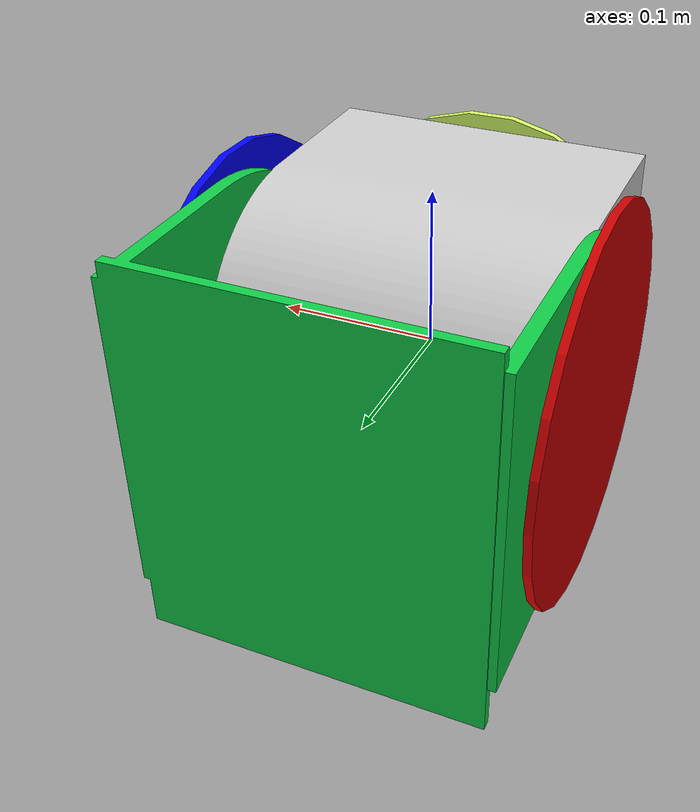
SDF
<?xml version="1.0" ?>
<sdf version="1.8">
<model name="smore" canonical_link="chasis_link">

  <!-- Back joint-->
  <joint name="back_wheel_link_joint" type="revolute">
    <pose relative_to="chasis_link">0.10390 0.05900 0.01019 0.00000 0.00000 0.00000</pose>
    <parent>chasis_link</parent>
    <child>back_link</child>
    <axis>
      <limit>
        <!-- Check actual ranges for back link-->
        <lower>-1.79769e+308</lower>
        <upper>1.79769e+308</upper>
      </limit>
      <xyz>1 0 0</xyz>
    </axis>
  </joint>
  <!-- Back joint-->

  <!-- Front wheel joint-->
  <joint name="front_wheel_link_joint" type="revolute">
    <pose relative_to="chasis_link">0.00000 -0.10251 -0.00000 1.57080 0.00000 0.00000</pose>
    <parent>chasis_link</parent>
    <child>front_wheel_link</child>
    <axis>
      <limit>
        <lower>-1.79769e+308</lower>
        <upper>1.79769e+308</upper>
      </limit>
      <xyz>0 0 1</xyz>
    </axis>
  </joint>
  <!-- Front wheel joint-->

  <!-- Left wheel joint-->
  <joint name="left_wheel_link_joint" type="revolute">
    <pose relative_to="chasis_link">0.11200 0.02822 0.00000 1.57080 1.41363 1.57080</pose>
    <parent>chasis_link</parent>
    <child>left_wheel_link</child>
    <axis>
      <limit>
        <lower>-1.79769e+308</lower>
        <upper>1.79769e+308</upper>
      </limit>
      <xyz>0 0 1</xyz>
    </axis>
  </joint>
  <!-- Left wheel joint-->

  <!-- Right wheel joint-->
  <joint name="right_wheel_link_joint" type="revolute">
    <pose relative_to="chasis_link">-0.11200 0.02822 0.00000 0.00000 1.57080 0.00000</pose>
    <parent>chasis_link</parent>
    <child>right_wheel_link</child>
    <axis>
      <limit>
        <lower>-1.79769e+308</lower>
        <upper>1.79769e+308</upper>
      </limit>
      <xyz>0 0 1</xyz>
    </axis>
  </joint>
  <!-- Right wheel joint-->

  <!-- Chasis link -->
  <link name="chasis_link">
    <pose>0.00000 0.00000 0.00000 0.00000 0.00000 0.00000</pose>
    <collision name="chasis_collision">
      <geometry>
        <mesh>
          <uri>/home/carlos/smore_ws/src/smore_project/ros_gz_example_description/models/smore/meshes/dae/Cube.dae</uri>
          <scale>0.10000 0.10000 0.10000</scale>
        </mesh>
      </geometry>
    </collision>
    <inertial>
      <inertia>
        <ixx>0.00100</ixx>
        <ixy>0.00000</ixy>
        <ixz>0.00000</ixz>
        <iyy>0.00100</iyy>
        <iyz>0.00000</iyz>
        <izz>0.00100</izz>
      </inertia>
      <mass>0.01000</mass>
    </inertial>
    <visual name="chasis">
      <material>
        <diffuse>0.80000 0.80000 0.80000 1.00000</diffuse>
        <specular>0.40000 0.40000 0.40000 0.49804</specular>
        <emissive>0.00000 0.00000 0.00000 1.00000</emissive>
      </material>
      <pose relative_to="chasis_link">0.00000 0.00000 0.00000 0.00000 0.00000 0.00000</pose>
      <geometry>
        <mesh>
          <uri>/home/carlos/smore_ws/src/smore_project/ros_gz_example_description/models/smore/meshes/dae/Cube.dae</uri>
          <scale>0.10000 0.10000 0.10000</scale>
        </mesh>
      </geometry>
    </visual>
  </link>
  <!-- Chasis link -->

  <!-- Back link -->
  <link name="back_link">
    <pose relative_to="chasis_link">0.10390 0.05900 0.01019 0.00000 0.00000 0.00000</pose>
    <collision name="back_collision">
      <geometry>
        <mesh>
          <uri>/home/carlos/smore_ws/src/smore_project/ros_gz_example_description/models/smore/meshes/dae/Cube.004.dae</uri>
          <scale>0.00300 0.08000 0.07000</scale>
        </mesh>
      </geometry>
    </collision>
    <visual name="back">
      <material>
        <diffuse>0.05882 0.80000 0.27843 1.00000</diffuse>
        <specular>0.02745 0.40000 0.13725 0.49804</specular>
        <emissive>0.00000 0.00000 0.00000 1.00000</emissive>
      </material>
      <pose relative_to="back_link">0.00000 0.00000 0.00000 0.00000 0.00000 0.00000</pose>
      <geometry>
        <mesh>
          <uri>/home/carlos/smore_ws/src/smore_project/ros_gz_example_description/models/smore/meshes/dae/Cube.004.dae</uri>
          <scale>0.00300 0.08000 0.07000</scale>
        </mesh>
      </geometry>
    </visual>
  </link>
  <!-- Back link -->

  <!-- Front wheel link-->
  <link name="front_wheel_link">
    <pose relative_to="chasis_link">0.00000 -0.10251 0.00000 1.57080 0.00000 0.00000</pose>
    <collision name="front_wheel_collision">
      <geometry>
        <cylinder>
          <radius>0.11000</radius>
          <length>0.00500</length>
        </cylinder>
      </geometry>
    </collision>
    <inertial>
      <inertia>
        <ixx>0.00003</ixx>
        <ixy>0.00000</ixy>
        <ixz>0.00000</ixz>
        <iyy>0.00006</iyy>
        <iyz>0.00000</iyz>
        <izz>0.00003</izz>
      </inertia>
      <mass>0.01000</mass>
    </inertial>
    <visual name="front_wheel">
      <material>
        <diffuse>0.83137 1.00000 0.40000 1.00000</diffuse>
        <specular>0.41569 0.49804 0.20000 0.49804</specular>
        <emissive>0.00000 0.00000 0.00000 1.00000</emissive>
      </material>
      <pose relative_to="front_wheel_link">-0.00000 -0.00000 -0.00000 0.00000 -0.00000 -0.14096</pose>
      <geometry>
        <cylinder>
          <radius>0.11000</radius>
          <length>0.00500</length>
        </cylinder>
      </geometry>
    </visual>
  </link>
  <!-- Front wheel link-->

  <!-- Left wheek link-->
  <link name="left_wheel_link">
    <pose relative_to="chasis_link">0.11200 0.02822 -0.00000 1.57080 1.41363 1.57080</pose>
    <collision name="left_wheel_collision">
      <geometry>
        <cylinder>
          <radius>0.12000</radius>
          <length>0.00500</length>
        </cylinder>
      </geometry>
    </collision>
    <inertial>
      <inertia>
        <ixx>0.00007</ixx>
        <ixy>0.00000</ixy>
        <ixz>0.00000</ixz>
        <iyy>0.00004</iyy>
        <iyz>0.00000</iyz>
        <izz>0.00004</izz>
      </inertia>
      <mass>0.01000</mass>
    </inertial>
    <visual name="left_wheel">
      <material>
        <diffuse>0.00000 0.00000 1.00000 1.00000</diffuse>
        <specular>0.00000 0.00000 0.49804 0.49804</specular>
        <emissive>0.00000 0.00000 0.00000 1.00000</emissive>
      </material>
      <pose relative_to="left_wheel_link">0.00000 0.00000 0.00000 0.00000 0.00000 0.00000</pose>
      <geometry>
        <cylinder>
          <radius>0.12000</radius>
          <length>0.00500</length>
        </cylinder>
      </geometry>
    </visual>
  </link>
  <!-- Left wheek link-->

  <!-- Right wheek link-->
  <link name="right_wheel_link">
    <pose relative_to="chasis_link">-0.11200 0.02822 0.00000 0.00000 1.57080 0.00000</pose>
    <collision name="right_wheel_collision">
      <geometry>
        <cylinder>
          <radius>0.12000</radius>
          <length>0.00500</length>
        </cylinder>
      </geometry>
    </collision>
    <inertial>
      <inertia>
        <ixx>0.00007</ixx>
        <ixy>0.00000</ixy>
        <ixz>0.00000</ixz>
        <iyy>0.00004</iyy>
        <iyz>0.00000</iyz>
        <izz>0.00004</izz>
      </inertia>
      <mass>0.01000</mass>
    </inertial>
    <visual name="right_wheel">
      <material>
        <diffuse>0.80000 0.00000 0.00000 1.00000</diffuse>
        <specular>0.40000 0.00000 0.00000 0.49804</specular>
        <emissive>0.00000 0.00000 0.00000 1.00000</emissive>
      </material>
      <pose relative_to="right_wheel_link">0.00000 0.00000 0.00000 0.00000 0.00000 0.00000</pose>
      <geometry>
        <cylinder>
          <radius>0.12000</radius>
          <length>0.00500</length>
        </cylinder>
      </geometry>
    </visual>
  </link>
  <!-- Right wheek link-->

  <plugin filename="ignition-gazebo-joint-position-controller-system"
    name="ignition::gazebo::systems::JointPositionController">
    <joint_name>back_wheel_link_joint</joint_name>
    <p_gain>20.00000</p_gain>
    <i_gain>0.00000</i_gain>
    <d_gain>0.00000</d_gain>
  </plugin>

  <plugin filename="ignition-gazebo-joint-position-controller-system"
    name="ignition::gazebo::systems::JointPositionController">
    <joint_name>front_wheel_link_joint</joint_name>
    <p_gain>20.00000</p_gain>
    <i_gain>0.00000</i_gain>
    <d_gain>0.00000</d_gain>
  </plugin>

  <plugin
    filename="libignition-gazebo-diff-drive-system.so"
    name="ignition::gazebo::systems::DiffDrive">
    <left_joint>left_wheel_link_joint</left_joint>
    <right_joint>right_wheel_link_joint</right_joint>
    <wheel_separation>0.2240</wheel_separation>
    <wheel_radius>0.12000</wheel_radius>
    <odom_publish_frequency>1</odom_publish_frequency>
    <topic>/smore/cmd_vel</topic>
  </plugin>

</model>
</sdf>
